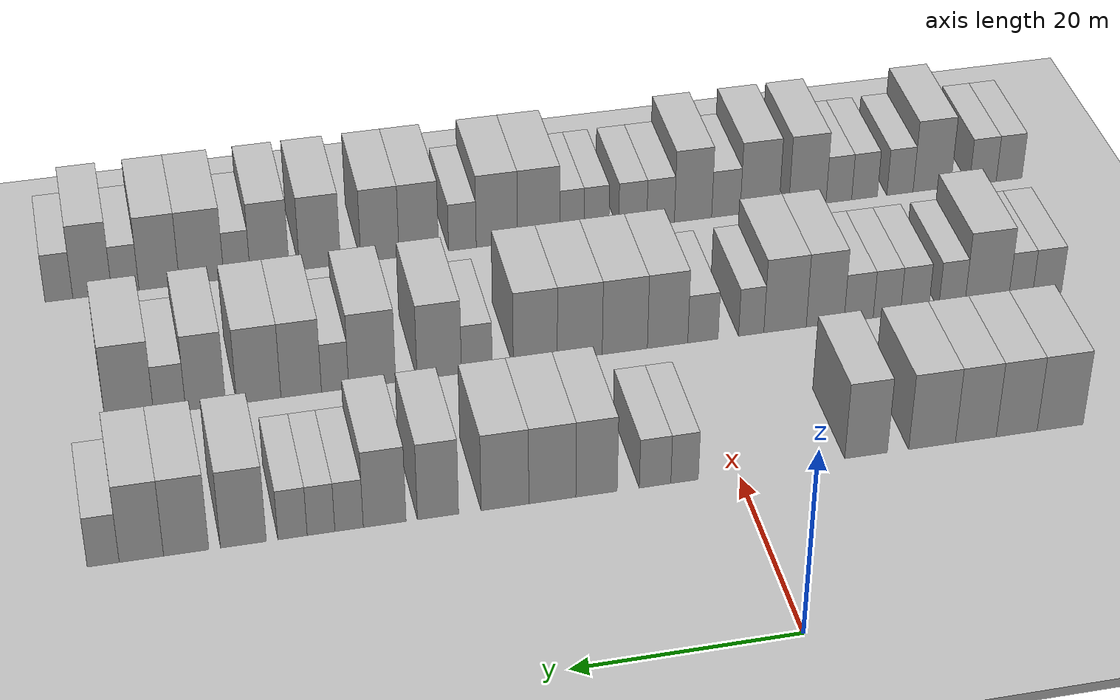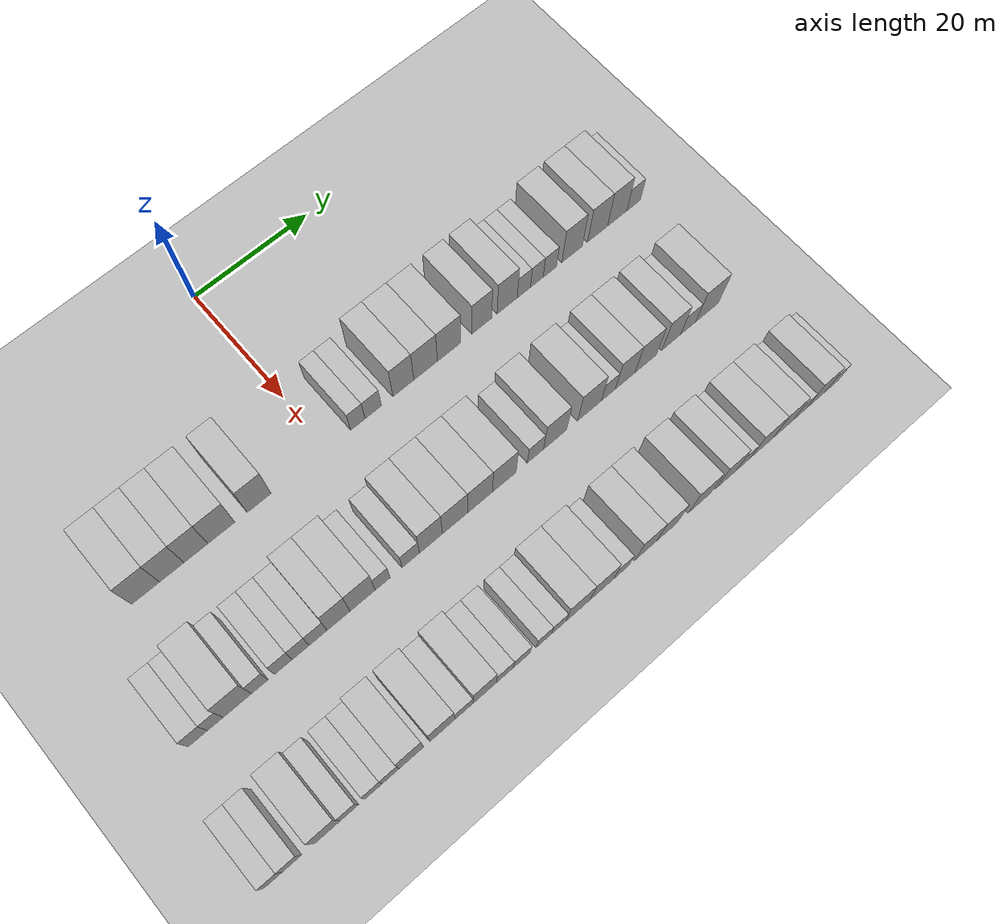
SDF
<sdf version="1.6">
 <world name="default">
  <include><name>ground_plane_1</name><uri>model://HANNAS_ground_plane</uri></include>
  <include>
   <name>ground_plane_2</name>
   <uri>model://HANNAS_ground_plane</uri>
   <pose>100 0 0  0 0 0</pose>
  </include>
  <model name="building_49">
   <static>1</static>
   <pose>25.0000 -29.9043 0 0.000000 0.000000 0.000000</pose>
   <link name="link">
    <pose>0 0 4.50 0 0 0</pose>
    <collision name="collision"><geometry><box><size>10.0000 4.3855 9.0000</size></box></geometry></collision>
    <visual name="visual">
     <cast_shadows>0</cast_shadows>
     <geometry><box><size>10.0000 4.3855 9.0000</size></box></geometry>
     <material>
      <script>
       <uri>model://HANNAS_wall/materials/scripts</uri>
       <uri>model://HANNAS_wall/materials/textures</uri>
       <name>vrc/HANNAS_wall</name>
      </script>
     </material>
    </visual>
   </link>
  </model>
  <model name="building_50">
   <static>1</static>
   <pose>25.0000 -25.7698 0 0.000000 0.000000 0.000000</pose>
   <link name="link">
    <pose>0 0 4.50 0 0 0</pose>
    <collision name="collision"><geometry><box><size>10.0000 3.8835 9.0000</size></box></geometry></collision>
    <visual name="visual">
     <cast_shadows>0</cast_shadows>
     <geometry><box><size>10.0000 3.8835 9.0000</size></box></geometry>
     <material>
      <script>
       <uri>model://HANNAS_wall/materials/scripts</uri>
       <uri>model://HANNAS_wall/materials/textures</uri>
       <name>vrc/HANNAS_wall</name>
      </script>
     </material>
    </visual>
   </link>
  </model>
  <model name="building_51">
   <static>1</static>
   <pose>25.0000 -21.9023 0 0.000000 0.000000 0.000000</pose>
   <link name="link">
    <pose>0 0 4.50 0 0 0</pose>
    <collision name="collision"><geometry><box><size>10.0000 3.8513 9.0000</size></box></geometry></collision>
    <visual name="visual">
     <cast_shadows>0</cast_shadows>
     <geometry><box><size>10.0000 3.8513 9.0000</size></box></geometry>
     <material>
      <script>
       <uri>model://HANNAS_wall/materials/scripts</uri>
       <uri>model://HANNAS_wall/materials/textures</uri>
       <name>vrc/HANNAS_wall</name>
      </script>
     </material>
    </visual>
   </link>
  </model>
  <model name="building_52">
   <static>1</static>
   <pose>25.0000 -17.7804 0 0.000000 0.000000 0.000000</pose>
   <link name="link">
    <pose>0 0 4.50 0 0 0</pose>
    <collision name="collision"><geometry><box><size>10.0000 4.3925 9.0000</size></box></geometry></collision>
    <visual name="visual">
     <cast_shadows>0</cast_shadows>
     <geometry><box><size>10.0000 4.3925 9.0000</size></box></geometry>
     <material>
      <script>
       <uri>model://HANNAS_wall/materials/scripts</uri>
       <uri>model://HANNAS_wall/materials/textures</uri>
       <name>vrc/HANNAS_wall</name>
      </script>
     </material>
    </visual>
   </link>
  </model>
  <model name="building_53">
   <static>1</static>
   <pose>25.0000 -11.5999 0 0.000000 0.000000 0.000000</pose>
   <link name="link">
    <pose>0 0 4.50 0 0 0</pose>
    <collision name="collision"><geometry><box><size>10.0000 3.9685 9.0000</size></box></geometry></collision>
    <visual name="visual">
     <cast_shadows>0</cast_shadows>
     <geometry><box><size>10.0000 3.9685 9.0000</size></box></geometry>
     <material>
      <script>
       <uri>model://HANNAS_wall/materials/scripts</uri>
       <uri>model://HANNAS_wall/materials/textures</uri>
       <name>vrc/HANNAS_wall</name>
      </script>
     </material>
    </visual>
   </link>
  </model>
  <model name="building_54">
   <static>1</static>
   <pose>25.0000 5.1252 0 0.000000 0.000000 0.000000</pose>
   <link name="link">
    <pose>0 0 3.00 0 0 0</pose>
    <collision name="collision"><geometry><box><size>10.0000 2.4939 6.0000</size></box></geometry></collision>
    <visual name="visual">
     <cast_shadows>0</cast_shadows>
     <geometry><box><size>10.0000 2.4939 6.0000</size></box></geometry>
     <material>
      <script>
       <uri>model://HANNAS_wall/materials/scripts</uri>
       <uri>model://HANNAS_wall/materials/textures</uri>
       <name>vrc/HANNAS_wall</name>
      </script>
     </material>
    </visual>
   </link>
  </model>
  <model name="building_55">
   <static>1</static>
   <pose>25.0000 7.8043 0 0.000000 0.000000 0.000000</pose>
   <link name="link">
    <pose>0 0 3.00 0 0 0</pose>
    <collision name="collision"><geometry><box><size>10.0000 2.8645 6.0000</size></box></geometry></collision>
    <visual name="visual">
     <cast_shadows>0</cast_shadows>
     <geometry><box><size>10.0000 2.8645 6.0000</size></box></geometry>
     <material>
      <script>
       <uri>model://HANNAS_wall/materials/scripts</uri>
       <uri>model://HANNAS_wall/materials/textures</uri>
       <name>vrc/HANNAS_wall</name>
      </script>
     </material>
    </visual>
   </link>
  </model>
  <model name="building_56">
   <static>1</static>
   <pose>25.0000 13.0980 0 0.000000 0.000000 0.000000</pose>
   <link name="link">
    <pose>0 0 4.50 0 0 0</pose>
    <collision name="collision"><geometry><box><size>10.0000 3.7228 9.0000</size></box></geometry></collision>
    <visual name="visual">
     <cast_shadows>0</cast_shadows>
     <geometry><box><size>10.0000 3.7228 9.0000</size></box></geometry>
     <material>
      <script>
       <uri>model://HANNAS_wall/materials/scripts</uri>
       <uri>model://HANNAS_wall/materials/textures</uri>
       <name>vrc/HANNAS_wall</name>
      </script>
     </material>
    </visual>
   </link>
  </model>
  <model name="building_57">
   <static>1</static>
   <pose>25.0000 17.0693 0 0.000000 0.000000 0.000000</pose>
   <link name="link">
    <pose>0 0 4.50 0 0 0</pose>
    <collision name="collision"><geometry><box><size>10.0000 4.2199 9.0000</size></box></geometry></collision>
    <visual name="visual">
     <cast_shadows>0</cast_shadows>
     <geometry><box><size>10.0000 4.2199 9.0000</size></box></geometry>
     <material>
      <script>
       <uri>model://HANNAS_wall/materials/scripts</uri>
       <uri>model://HANNAS_wall/materials/textures</uri>
       <name>vrc/HANNAS_wall</name>
      </script>
     </material>
    </visual>
   </link>
  </model>
  <model name="building_58">
   <static>1</static>
   <pose>25.0000 21.3011 0 0.000000 0.000000 0.000000</pose>
   <link name="link">
    <pose>0 0 4.50 0 0 0</pose>
    <collision name="collision"><geometry><box><size>10.0000 4.2438 9.0000</size></box></geometry></collision>
    <visual name="visual">
     <cast_shadows>0</cast_shadows>
     <geometry><box><size>10.0000 4.2438 9.0000</size></box></geometry>
     <material>
      <script>
       <uri>model://HANNAS_wall/materials/scripts</uri>
       <uri>model://HANNAS_wall/materials/textures</uri>
       <name>vrc/HANNAS_wall</name>
      </script>
     </material>
    </visual>
   </link>
  </model>
  <model name="building_59">
   <static>1</static>
   <pose>25.0000 27.2398 0 0.000000 0.000000 0.000000</pose>
   <link name="link">
    <pose>0 0 4.50 0 0 0</pose>
    <collision name="collision"><geometry><box><size>10.0000 3.6337 9.0000</size></box></geometry></collision>
    <visual name="visual">
     <cast_shadows>0</cast_shadows>
     <geometry><box><size>10.0000 3.6337 9.0000</size></box></geometry>
     <material>
      <script>
       <uri>model://HANNAS_wall/materials/scripts</uri>
       <uri>model://HANNAS_wall/materials/textures</uri>
       <name>vrc/HANNAS_wall</name>
      </script>
     </material>
    </visual>
   </link>
  </model>
  <model name="building_60">
   <static>1</static>
   <pose>25.0000 31.9329 0 0.000000 0.000000 0.000000</pose>
   <link name="link">
    <pose>0 0 4.50 0 0 0</pose>
    <collision name="collision"><geometry><box><size>10.0000 3.7525 9.0000</size></box></geometry></collision>
    <visual name="visual">
     <cast_shadows>0</cast_shadows>
     <geometry><box><size>10.0000 3.7525 9.0000</size></box></geometry>
     <material>
      <script>
       <uri>model://HANNAS_wall/materials/scripts</uri>
       <uri>model://HANNAS_wall/materials/textures</uri>
       <name>vrc/HANNAS_wall</name>
      </script>
     </material>
    </visual>
   </link>
  </model>
  <model name="building_61">
   <static>1</static>
   <pose>25.0000 35.0508 0 0.000000 0.000000 0.000000</pose>
   <link name="link">
    <pose>0 0 3.00 0 0 0</pose>
    <collision name="collision"><geometry><box><size>10.0000 2.4834 6.0000</size></box></geometry></collision>
    <visual name="visual">
     <cast_shadows>0</cast_shadows>
     <geometry><box><size>10.0000 2.4834 6.0000</size></box></geometry>
     <material>
      <script>
       <uri>model://HANNAS_wall/materials/scripts</uri>
       <uri>model://HANNAS_wall/materials/textures</uri>
       <name>vrc/HANNAS_wall</name>
      </script>
     </material>
    </visual>
   </link>
  </model>
  <model name="building_62">
   <static>1</static>
   <pose>25.0000 37.4992 0 0.000000 0.000000 0.000000</pose>
   <link name="link">
    <pose>0 0 3.00 0 0 0</pose>
    <collision name="collision"><geometry><box><size>10.0000 2.4134 6.0000</size></box></geometry></collision>
    <visual name="visual">
     <cast_shadows>0</cast_shadows>
     <geometry><box><size>10.0000 2.4134 6.0000</size></box></geometry>
     <material>
      <script>
       <uri>model://HANNAS_wall/materials/scripts</uri>
       <uri>model://HANNAS_wall/materials/textures</uri>
       <name>vrc/HANNAS_wall</name>
      </script>
     </material>
    </visual>
   </link>
  </model>
  <model name="building_63">
   <static>1</static>
   <pose>25.0000 39.9782 0 0.000000 0.000000 0.000000</pose>
   <link name="link">
    <pose>0 0 3.00 0 0 0</pose>
    <collision name="collision"><geometry><box><size>10.0000 2.5448 6.0000</size></box></geometry></collision>
    <visual name="visual">
     <cast_shadows>0</cast_shadows>
     <geometry><box><size>10.0000 2.5448 6.0000</size></box></geometry>
     <material>
      <script>
       <uri>model://HANNAS_wall/materials/scripts</uri>
       <uri>model://HANNAS_wall/materials/textures</uri>
       <name>vrc/HANNAS_wall</name>
      </script>
     </material>
    </visual>
   </link>
  </model>
  <model name="building_64">
   <static>1</static>
   <pose>25.0000 44.2286 0 0.000000 0.000000 0.000000</pose>
   <link name="link">
    <pose>0 0 4.50 0 0 0</pose>
    <collision name="collision"><geometry><box><size>10.0000 3.9559 9.0000</size></box></geometry></collision>
    <visual name="visual">
     <cast_shadows>0</cast_shadows>
     <geometry><box><size>10.0000 3.9559 9.0000</size></box></geometry>
     <material>
      <script>
       <uri>model://HANNAS_wall/materials/scripts</uri>
       <uri>model://HANNAS_wall/materials/textures</uri>
       <name>vrc/HANNAS_wall</name>
      </script>
     </material>
    </visual>
   </link>
  </model>
  <model name="building_65">
   <static>1</static>
   <pose>25.0000 49.1454 0 0.000000 0.000000 0.000000</pose>
   <link name="link">
    <pose>0 0 4.50 0 0 0</pose>
    <collision name="collision"><geometry><box><size>10.0000 3.8777 9.0000</size></box></geometry></collision>
    <visual name="visual">
     <cast_shadows>0</cast_shadows>
     <geometry><box><size>10.0000 3.8777 9.0000</size></box></geometry>
     <material>
      <script>
       <uri>model://HANNAS_wall/materials/scripts</uri>
       <uri>model://HANNAS_wall/materials/textures</uri>
       <name>vrc/HANNAS_wall</name>
      </script>
     </material>
    </visual>
   </link>
  </model>
  <model name="building_66">
   <static>1</static>
   <pose>25.0000 52.9749 0 0.000000 0.000000 0.000000</pose>
   <link name="link">
    <pose>0 0 4.50 0 0 0</pose>
    <collision name="collision"><geometry><box><size>10.0000 3.7815 9.0000</size></box></geometry></collision>
    <visual name="visual">
     <cast_shadows>0</cast_shadows>
     <geometry><box><size>10.0000 3.7815 9.0000</size></box></geometry>
     <material>
      <script>
       <uri>model://HANNAS_wall/materials/scripts</uri>
       <uri>model://HANNAS_wall/materials/textures</uri>
       <name>vrc/HANNAS_wall</name>
      </script>
     </material>
    </visual>
   </link>
  </model>
  <model name="building_67">
   <static>1</static>
   <pose>25.0000 56.2244 0 0.000000 0.000000 0.000000</pose>
   <link name="link">
    <pose>0 0 3.00 0 0 0</pose>
    <collision name="collision"><geometry><box><size>10.0000 2.7175 6.0000</size></box></geometry></collision>
    <visual name="visual">
     <cast_shadows>0</cast_shadows>
     <geometry><box><size>10.0000 2.7175 6.0000</size></box></geometry>
     <material>
      <script>
       <uri>model://HANNAS_wall/materials/scripts</uri>
       <uri>model://HANNAS_wall/materials/textures</uri>
       <name>vrc/HANNAS_wall</name>
      </script>
     </material>
    </visual>
   </link>
  </model>
  <model name="building_157">
   <static>1</static>
   <pose>44.0000 -35.6954 0 0.000000 0.000000 0.000000</pose>
   <link name="link">
    <pose>0 0 3.00 0 0 0</pose>
    <collision name="collision"><geometry><box><size>10.0000 2.9501 6.0000</size></box></geometry></collision>
    <visual name="visual">
     <cast_shadows>0</cast_shadows>
     <geometry><box><size>10.0000 2.9501 6.0000</size></box></geometry>
     <material>
      <script>
       <uri>model://HANNAS_wall/materials/scripts</uri>
       <uri>model://HANNAS_wall/materials/textures</uri>
       <name>vrc/HANNAS_wall</name>
      </script>
     </material>
    </visual>
   </link>
  </model>
  <model name="building_158">
   <static>1</static>
   <pose>44.0000 -33.0142 0 0.000000 0.000000 0.000000</pose>
   <link name="link">
    <pose>0 0 3.00 0 0 0</pose>
    <collision name="collision"><geometry><box><size>10.0000 2.4123 6.0000</size></box></geometry></collision>
    <visual name="visual">
     <cast_shadows>0</cast_shadows>
     <geometry><box><size>10.0000 2.4123 6.0000</size></box></geometry>
     <material>
      <script>
       <uri>model://HANNAS_wall/materials/scripts</uri>
       <uri>model://HANNAS_wall/materials/textures</uri>
       <name>vrc/HANNAS_wall</name>
      </script>
     </material>
    </visual>
   </link>
  </model>
  <model name="building_159">
   <static>1</static>
   <pose>44.0000 -29.6021 0 0.000000 0.000000 0.000000</pose>
   <link name="link">
    <pose>0 0 4.50 0 0 0</pose>
    <collision name="collision"><geometry><box><size>10.0000 4.4119 9.0000</size></box></geometry></collision>
    <visual name="visual">
     <cast_shadows>0</cast_shadows>
     <geometry><box><size>10.0000 4.4119 9.0000</size></box></geometry>
     <material>
      <script>
       <uri>model://HANNAS_wall/materials/scripts</uri>
       <uri>model://HANNAS_wall/materials/textures</uri>
       <name>vrc/HANNAS_wall</name>
      </script>
     </material>
    </visual>
   </link>
  </model>
  <model name="building_160">
   <static>1</static>
   <pose>44.0000 -26.0879 0 0.000000 0.000000 0.000000</pose>
   <link name="link">
    <pose>0 0 3.00 0 0 0</pose>
    <collision name="collision"><geometry><box><size>10.0000 2.6163 6.0000</size></box></geometry></collision>
    <visual name="visual">
     <cast_shadows>0</cast_shadows>
     <geometry><box><size>10.0000 2.6163 6.0000</size></box></geometry>
     <material>
      <script>
       <uri>model://HANNAS_wall/materials/scripts</uri>
       <uri>model://HANNAS_wall/materials/textures</uri>
       <name>vrc/HANNAS_wall</name>
      </script>
     </material>
    </visual>
   </link>
  </model>
  <model name="building_161">
   <static>1</static>
   <pose>44.0000 -22.3726 0 0.000000 0.000000 0.000000</pose>
   <link name="link">
    <pose>0 0 3.00 0 0 0</pose>
    <collision name="collision"><geometry><box><size>10.0000 2.8143 6.0000</size></box></geometry></collision>
    <visual name="visual">
     <cast_shadows>0</cast_shadows>
     <geometry><box><size>10.0000 2.8143 6.0000</size></box></geometry>
     <material>
      <script>
       <uri>model://HANNAS_wall/materials/scripts</uri>
       <uri>model://HANNAS_wall/materials/textures</uri>
       <name>vrc/HANNAS_wall</name>
      </script>
     </material>
    </visual>
   </link>
  </model>
  <model name="building_162">
   <static>1</static>
   <pose>44.0000 -19.6145 0 0.000000 0.000000 0.000000</pose>
   <link name="link">
    <pose>0 0 3.00 0 0 0</pose>
    <collision name="collision"><geometry><box><size>10.0000 2.7020 6.0000</size></box></geometry></collision>
    <visual name="visual">
     <cast_shadows>0</cast_shadows>
     <geometry><box><size>10.0000 2.7020 6.0000</size></box></geometry>
     <material>
      <script>
       <uri>model://HANNAS_wall/materials/scripts</uri>
       <uri>model://HANNAS_wall/materials/textures</uri>
       <name>vrc/HANNAS_wall</name>
      </script>
     </material>
    </visual>
   </link>
  </model>
  <model name="building_163">
   <static>1</static>
   <pose>44.0000 -16.8200 0 0.000000 0.000000 0.000000</pose>
   <link name="link">
    <pose>0 0 3.00 0 0 0</pose>
    <collision name="collision"><geometry><box><size>10.0000 2.8869 6.0000</size></box></geometry></collision>
    <visual name="visual">
     <cast_shadows>0</cast_shadows>
     <geometry><box><size>10.0000 2.8869 6.0000</size></box></geometry>
     <material>
      <script>
       <uri>model://HANNAS_wall/materials/scripts</uri>
       <uri>model://HANNAS_wall/materials/textures</uri>
       <name>vrc/HANNAS_wall</name>
      </script>
     </material>
    </visual>
   </link>
  </model>
  <model name="building_164">
   <static>1</static>
   <pose>44.0000 -13.5125 0 0.000000 0.000000 0.000000</pose>
   <link name="link">
    <pose>0 0 4.50 0 0 0</pose>
    <collision name="collision"><geometry><box><size>10.0000 3.7283 9.0000</size></box></geometry></collision>
    <visual name="visual">
     <cast_shadows>0</cast_shadows>
     <geometry><box><size>10.0000 3.7283 9.0000</size></box></geometry>
     <material>
      <script>
       <uri>model://HANNAS_wall/materials/scripts</uri>
       <uri>model://HANNAS_wall/materials/textures</uri>
       <name>vrc/HANNAS_wall</name>
      </script>
     </material>
    </visual>
   </link>
  </model>
  <model name="building_165">
   <static>1</static>
   <pose>44.0000 -9.5671 0 0.000000 0.000000 0.000000</pose>
   <link name="link">
    <pose>0 0 4.50 0 0 0</pose>
    <collision name="collision"><geometry><box><size>10.0000 4.1624 9.0000</size></box></geometry></collision>
    <visual name="visual">
     <cast_shadows>0</cast_shadows>
     <geometry><box><size>10.0000 4.1624 9.0000</size></box></geometry>
     <material>
      <script>
       <uri>model://HANNAS_wall/materials/scripts</uri>
       <uri>model://HANNAS_wall/materials/textures</uri>
       <name>vrc/HANNAS_wall</name>
      </script>
     </material>
    </visual>
   </link>
  </model>
  <model name="building_166">
   <static>1</static>
   <pose>44.0000 -6.2534 0 0.000000 0.000000 0.000000</pose>
   <link name="link">
    <pose>0 0 3.00 0 0 0</pose>
    <collision name="collision"><geometry><box><size>10.0000 2.4652 6.0000</size></box></geometry></collision>
    <visual name="visual">
     <cast_shadows>0</cast_shadows>
     <geometry><box><size>10.0000 2.4652 6.0000</size></box></geometry>
     <material>
      <script>
       <uri>model://HANNAS_wall/materials/scripts</uri>
       <uri>model://HANNAS_wall/materials/textures</uri>
       <name>vrc/HANNAS_wall</name>
      </script>
     </material>
    </visual>
   </link>
  </model>
  <model name="building_167">
   <static>1</static>
   <pose>44.0000 -1.5478 0 0.000000 0.000000 0.000000</pose>
   <link name="link">
    <pose>0 0 3.00 0 0 0</pose>
    <collision name="collision"><geometry><box><size>10.0000 2.9460 6.0000</size></box></geometry></collision>
    <visual name="visual">
     <cast_shadows>0</cast_shadows>
     <geometry><box><size>10.0000 2.9460 6.0000</size></box></geometry>
     <material>
      <script>
       <uri>model://HANNAS_wall/materials/scripts</uri>
       <uri>model://HANNAS_wall/materials/textures</uri>
       <name>vrc/HANNAS_wall</name>
      </script>
     </material>
    </visual>
   </link>
  </model>
  <model name="building_168">
   <static>1</static>
   <pose>44.0000 1.8777 0 0.000000 0.000000 0.000000</pose>
   <link name="link">
    <pose>0 0 4.50 0 0 0</pose>
    <collision name="collision"><geometry><box><size>10.0000 3.9048 9.0000</size></box></geometry></collision>
    <visual name="visual">
     <cast_shadows>0</cast_shadows>
     <geometry><box><size>10.0000 3.9048 9.0000</size></box></geometry>
     <material>
      <script>
       <uri>model://HANNAS_wall/materials/scripts</uri>
       <uri>model://HANNAS_wall/materials/textures</uri>
       <name>vrc/HANNAS_wall</name>
      </script>
     </material>
    </visual>
   </link>
  </model>
  <model name="building_169">
   <static>1</static>
   <pose>44.0000 6.0030 0 0.000000 0.000000 0.000000</pose>
   <link name="link">
    <pose>0 0 4.50 0 0 0</pose>
    <collision name="collision"><geometry><box><size>10.0000 4.3459 9.0000</size></box></geometry></collision>
    <visual name="visual">
     <cast_shadows>0</cast_shadows>
     <geometry><box><size>10.0000 4.3459 9.0000</size></box></geometry>
     <material>
      <script>
       <uri>model://HANNAS_wall/materials/scripts</uri>
       <uri>model://HANNAS_wall/materials/textures</uri>
       <name>vrc/HANNAS_wall</name>
      </script>
     </material>
    </visual>
   </link>
  </model>
  <model name="building_170">
   <static>1</static>
   <pose>44.0000 10.3260 0 0.000000 0.000000 0.000000</pose>
   <link name="link">
    <pose>0 0 4.50 0 0 0</pose>
    <collision name="collision"><geometry><box><size>10.0000 4.3001 9.0000</size></box></geometry></collision>
    <visual name="visual">
     <cast_shadows>0</cast_shadows>
     <geometry><box><size>10.0000 4.3001 9.0000</size></box></geometry>
     <material>
      <script>
       <uri>model://HANNAS_wall/materials/scripts</uri>
       <uri>model://HANNAS_wall/materials/textures</uri>
       <name>vrc/HANNAS_wall</name>
      </script>
     </material>
    </visual>
   </link>
  </model>
  <model name="building_171">
   <static>1</static>
   <pose>44.0000 14.5685 0 0.000000 0.000000 0.000000</pose>
   <link name="link">
    <pose>0 0 4.50 0 0 0</pose>
    <collision name="collision"><geometry><box><size>10.0000 4.1847 9.0000</size></box></geometry></collision>
    <visual name="visual">
     <cast_shadows>0</cast_shadows>
     <geometry><box><size>10.0000 4.1847 9.0000</size></box></geometry>
     <material>
      <script>
       <uri>model://HANNAS_wall/materials/scripts</uri>
       <uri>model://HANNAS_wall/materials/textures</uri>
       <name>vrc/HANNAS_wall</name>
      </script>
     </material>
    </visual>
   </link>
  </model>
  <model name="building_172">
   <static>1</static>
   <pose>44.0000 20.1093 0 0.000000 0.000000 0.000000</pose>
   <link name="link">
    <pose>0 0 3.00 0 0 0</pose>
    <collision name="collision"><geometry><box><size>10.0000 2.8970 6.0000</size></box></geometry></collision>
    <visual name="visual">
     <cast_shadows>0</cast_shadows>
     <geometry><box><size>10.0000 2.8970 6.0000</size></box></geometry>
     <material>
      <script>
       <uri>model://HANNAS_wall/materials/scripts</uri>
       <uri>model://HANNAS_wall/materials/textures</uri>
       <name>vrc/HANNAS_wall</name>
      </script>
     </material>
    </visual>
   </link>
  </model>
  <model name="building_173">
   <static>1</static>
   <pose>44.0000 23.6455 0 0.000000 0.000000 0.000000</pose>
   <link name="link">
    <pose>0 0 4.50 0 0 0</pose>
    <collision name="collision"><geometry><box><size>10.0000 4.1752 9.0000</size></box></geometry></collision>
    <visual name="visual">
     <cast_shadows>0</cast_shadows>
     <geometry><box><size>10.0000 4.1752 9.0000</size></box></geometry>
     <material>
      <script>
       <uri>model://HANNAS_wall/materials/scripts</uri>
       <uri>model://HANNAS_wall/materials/textures</uri>
       <name>vrc/HANNAS_wall</name>
      </script>
     </material>
    </visual>
   </link>
  </model>
  <model name="building_174">
   <static>1</static>
   <pose>44.0000 29.9189 0 0.000000 0.000000 0.000000</pose>
   <link name="link">
    <pose>0 0 4.50 0 0 0</pose>
    <collision name="collision"><geometry><box><size>10.0000 4.3717 9.0000</size></box></geometry></collision>
    <visual name="visual">
     <cast_shadows>0</cast_shadows>
     <geometry><box><size>10.0000 4.3717 9.0000</size></box></geometry>
     <material>
      <script>
       <uri>model://HANNAS_wall/materials/scripts</uri>
       <uri>model://HANNAS_wall/materials/textures</uri>
       <name>vrc/HANNAS_wall</name>
      </script>
     </material>
    </visual>
   </link>
  </model>
  <model name="building_175">
   <static>1</static>
   <pose>44.0000 33.3730 0 0.000000 0.000000 0.000000</pose>
   <link name="link">
    <pose>0 0 3.00 0 0 0</pose>
    <collision name="collision"><geometry><box><size>10.0000 2.5366 6.0000</size></box></geometry></collision>
    <visual name="visual">
     <cast_shadows>0</cast_shadows>
     <geometry><box><size>10.0000 2.5366 6.0000</size></box></geometry>
     <material>
      <script>
       <uri>model://HANNAS_wall/materials/scripts</uri>
       <uri>model://HANNAS_wall/materials/textures</uri>
       <name>vrc/HANNAS_wall</name>
      </script>
     </material>
    </visual>
   </link>
  </model>
  <model name="building_176">
   <static>1</static>
   <pose>44.0000 36.5141 0 0.000000 0.000000 0.000000</pose>
   <link name="link">
    <pose>0 0 4.50 0 0 0</pose>
    <collision name="collision"><geometry><box><size>10.0000 3.7456 9.0000</size></box></geometry></collision>
    <visual name="visual">
     <cast_shadows>0</cast_shadows>
     <geometry><box><size>10.0000 3.7456 9.0000</size></box></geometry>
     <material>
      <script>
       <uri>model://HANNAS_wall/materials/scripts</uri>
       <uri>model://HANNAS_wall/materials/textures</uri>
       <name>vrc/HANNAS_wall</name>
      </script>
     </material>
    </visual>
   </link>
  </model>
  <model name="building_177">
   <static>1</static>
   <pose>44.0000 40.4242 0 0.000000 0.000000 0.000000</pose>
   <link name="link">
    <pose>0 0 4.50 0 0 0</pose>
    <collision name="collision"><geometry><box><size>10.0000 4.0746 9.0000</size></box></geometry></collision>
    <visual name="visual">
     <cast_shadows>0</cast_shadows>
     <geometry><box><size>10.0000 4.0746 9.0000</size></box></geometry>
     <material>
      <script>
       <uri>model://HANNAS_wall/materials/scripts</uri>
       <uri>model://HANNAS_wall/materials/textures</uri>
       <name>vrc/HANNAS_wall</name>
      </script>
     </material>
    </visual>
   </link>
  </model>
  <model name="building_178">
   <static>1</static>
   <pose>44.0000 45.2902 0 0.000000 0.000000 0.000000</pose>
   <link name="link">
    <pose>0 0 4.50 0 0 0</pose>
    <collision name="collision"><geometry><box><size>10.0000 3.6574 9.0000</size></box></geometry></collision>
    <visual name="visual">
     <cast_shadows>0</cast_shadows>
     <geometry><box><size>10.0000 3.6574 9.0000</size></box></geometry>
     <material>
      <script>
       <uri>model://HANNAS_wall/materials/scripts</uri>
       <uri>model://HANNAS_wall/materials/textures</uri>
       <name>vrc/HANNAS_wall</name>
      </script>
     </material>
    </visual>
   </link>
  </model>
  <model name="building_179">
   <static>1</static>
   <pose>44.0000 48.5727 0 0.000000 0.000000 0.000000</pose>
   <link name="link">
    <pose>0 0 3.00 0 0 0</pose>
    <collision name="collision"><geometry><box><size>10.0000 2.9076 6.0000</size></box></geometry></collision>
    <visual name="visual">
     <cast_shadows>0</cast_shadows>
     <geometry><box><size>10.0000 2.9076 6.0000</size></box></geometry>
     <material>
      <script>
       <uri>model://HANNAS_wall/materials/scripts</uri>
       <uri>model://HANNAS_wall/materials/textures</uri>
       <name>vrc/HANNAS_wall</name>
      </script>
     </material>
    </visual>
   </link>
  </model>
  <model name="building_180">
   <static>1</static>
   <pose>44.0000 52.2345 0 0.000000 0.000000 0.000000</pose>
   <link name="link">
    <pose>0 0 4.50 0 0 0</pose>
    <collision name="collision"><geometry><box><size>10.0000 4.4158 9.0000</size></box></geometry></collision>
    <visual name="visual">
     <cast_shadows>0</cast_shadows>
     <geometry><box><size>10.0000 4.4158 9.0000</size></box></geometry>
     <material>
      <script>
       <uri>model://HANNAS_wall/materials/scripts</uri>
       <uri>model://HANNAS_wall/materials/textures</uri>
       <name>vrc/HANNAS_wall</name>
      </script>
     </material>
    </visual>
   </link>
  </model>
  <model name="building_281">
   <static>1</static>
   <pose>63.0000 -38.6848 0 0.000000 0.000000 0.000000</pose>
   <link name="link">
    <pose>0 0 3.00 0 0 0</pose>
    <collision name="collision"><geometry><box><size>10.0000 2.7489 6.0000</size></box></geometry></collision>
    <visual name="visual">
     <cast_shadows>0</cast_shadows>
     <geometry><box><size>10.0000 2.7489 6.0000</size></box></geometry>
     <material>
      <script>
       <uri>model://HANNAS_wall/materials/scripts</uri>
       <uri>model://HANNAS_wall/materials/textures</uri>
       <name>vrc/HANNAS_wall</name>
      </script>
     </material>
    </visual>
   </link>
  </model>
  <model name="building_282">
   <static>1</static>
   <pose>63.0000 -35.8818 0 0.000000 0.000000 0.000000</pose>
   <link name="link">
    <pose>0 0 3.00 0 0 0</pose>
    <collision name="collision"><geometry><box><size>10.0000 2.8569 6.0000</size></box></geometry></collision>
    <visual name="visual">
     <cast_shadows>0</cast_shadows>
     <geometry><box><size>10.0000 2.8569 6.0000</size></box></geometry>
     <material>
      <script>
       <uri>model://HANNAS_wall/materials/scripts</uri>
       <uri>model://HANNAS_wall/materials/textures</uri>
       <name>vrc/HANNAS_wall</name>
      </script>
     </material>
    </visual>
   </link>
  </model>
  <model name="building_283">
   <static>1</static>
   <pose>63.0000 -30.4624 0 0.000000 0.000000 0.000000</pose>
   <link name="link">
    <pose>0 0 4.50 0 0 0</pose>
    <collision name="collision"><geometry><box><size>10.0000 3.9820 9.0000</size></box></geometry></collision>
    <visual name="visual">
     <cast_shadows>0</cast_shadows>
     <geometry><box><size>10.0000 3.9820 9.0000</size></box></geometry>
     <material>
      <script>
       <uri>model://HANNAS_wall/materials/scripts</uri>
       <uri>model://HANNAS_wall/materials/textures</uri>
       <name>vrc/HANNAS_wall</name>
      </script>
     </material>
    </visual>
   </link>
  </model>
  <model name="building_284">
   <static>1</static>
   <pose>63.0000 -27.0901 0 0.000000 0.000000 0.000000</pose>
   <link name="link">
    <pose>0 0 3.00 0 0 0</pose>
    <collision name="collision"><geometry><box><size>10.0000 2.7624 6.0000</size></box></geometry></collision>
    <visual name="visual">
     <cast_shadows>0</cast_shadows>
     <geometry><box><size>10.0000 2.7624 6.0000</size></box></geometry>
     <material>
      <script>
       <uri>model://HANNAS_wall/materials/scripts</uri>
       <uri>model://HANNAS_wall/materials/textures</uri>
       <name>vrc/HANNAS_wall</name>
      </script>
     </material>
    </visual>
   </link>
  </model>
  <model name="building_285">
   <static>1</static>
   <pose>63.0000 -23.3567 0 0.000000 0.000000 0.000000</pose>
   <link name="link">
    <pose>0 0 3.00 0 0 0</pose>
    <collision name="collision"><geometry><box><size>10.0000 2.7044 6.0000</size></box></geometry></collision>
    <visual name="visual">
     <cast_shadows>0</cast_shadows>
     <geometry><box><size>10.0000 2.7044 6.0000</size></box></geometry>
     <material>
      <script>
       <uri>model://HANNAS_wall/materials/scripts</uri>
       <uri>model://HANNAS_wall/materials/textures</uri>
       <name>vrc/HANNAS_wall</name>
      </script>
     </material>
    </visual>
   </link>
  </model>
  <model name="building_286">
   <static>1</static>
   <pose>63.0000 -20.6589 0 0.000000 0.000000 0.000000</pose>
   <link name="link">
    <pose>0 0 3.00 0 0 0</pose>
    <collision name="collision"><geometry><box><size>10.0000 2.6913 6.0000</size></box></geometry></collision>
    <visual name="visual">
     <cast_shadows>0</cast_shadows>
     <geometry><box><size>10.0000 2.6913 6.0000</size></box></geometry>
     <material>
      <script>
       <uri>model://HANNAS_wall/materials/scripts</uri>
       <uri>model://HANNAS_wall/materials/textures</uri>
       <name>vrc/HANNAS_wall</name>
      </script>
     </material>
    </visual>
   </link>
  </model>
  <model name="building_287">
   <static>1</static>
   <pose>63.0000 -17.3670 0 0.000000 0.000000 0.000000</pose>
   <link name="link">
    <pose>0 0 4.50 0 0 0</pose>
    <collision name="collision"><geometry><box><size>10.0000 3.8924 9.0000</size></box></geometry></collision>
    <visual name="visual">
     <cast_shadows>0</cast_shadows>
     <geometry><box><size>10.0000 3.8924 9.0000</size></box></geometry>
     <material>
      <script>
       <uri>model://HANNAS_wall/materials/scripts</uri>
       <uri>model://HANNAS_wall/materials/textures</uri>
       <name>vrc/HANNAS_wall</name>
      </script>
     </material>
    </visual>
   </link>
  </model>
  <model name="building_288">
   <static>1</static>
   <pose>63.0000 -12.4018 0 0.000000 0.000000 0.000000</pose>
   <link name="link">
    <pose>0 0 4.50 0 0 0</pose>
    <collision name="collision"><geometry><box><size>10.0000 4.0380 9.0000</size></box></geometry></collision>
    <visual name="visual">
     <cast_shadows>0</cast_shadows>
     <geometry><box><size>10.0000 4.0380 9.0000</size></box></geometry>
     <material>
      <script>
       <uri>model://HANNAS_wall/materials/scripts</uri>
       <uri>model://HANNAS_wall/materials/textures</uri>
       <name>vrc/HANNAS_wall</name>
      </script>
     </material>
    </visual>
   </link>
  </model>
  <model name="building_289">
   <static>1</static>
   <pose>63.0000 -8.9106 0 0.000000 0.000000 0.000000</pose>
   <link name="link">
    <pose>0 0 3.00 0 0 0</pose>
    <collision name="collision"><geometry><box><size>10.0000 2.9444 6.0000</size></box></geometry></collision>
    <visual name="visual">
     <cast_shadows>0</cast_shadows>
     <geometry><box><size>10.0000 2.9444 6.0000</size></box></geometry>
     <material>
      <script>
       <uri>model://HANNAS_wall/materials/scripts</uri>
       <uri>model://HANNAS_wall/materials/textures</uri>
       <name>vrc/HANNAS_wall</name>
      </script>
     </material>
    </visual>
   </link>
  </model>
  <model name="building_290">
   <static>1</static>
   <pose>63.0000 -5.5254 0 0.000000 0.000000 0.000000</pose>
   <link name="link">
    <pose>0 0 4.50 0 0 0</pose>
    <collision name="collision"><geometry><box><size>10.0000 3.8259 9.0000</size></box></geometry></collision>
    <visual name="visual">
     <cast_shadows>0</cast_shadows>
     <geometry><box><size>10.0000 3.8259 9.0000</size></box></geometry>
     <material>
      <script>
       <uri>model://HANNAS_wall/materials/scripts</uri>
       <uri>model://HANNAS_wall/materials/textures</uri>
       <name>vrc/HANNAS_wall</name>
      </script>
     </material>
    </visual>
   </link>
  </model>
  <model name="building_291">
   <static>1</static>
   <pose>63.0000 -2.1945 0 0.000000 0.000000 0.000000</pose>
   <link name="link">
    <pose>0 0 3.00 0 0 0</pose>
    <collision name="collision"><geometry><box><size>10.0000 2.8360 6.0000</size></box></geometry></collision>
    <visual name="visual">
     <cast_shadows>0</cast_shadows>
     <geometry><box><size>10.0000 2.8360 6.0000</size></box></geometry>
     <material>
      <script>
       <uri>model://HANNAS_wall/materials/scripts</uri>
       <uri>model://HANNAS_wall/materials/textures</uri>
       <name>vrc/HANNAS_wall</name>
      </script>
     </material>
    </visual>
   </link>
  </model>
  <model name="building_292">
   <static>1</static>
   <pose>63.0000 0.6583 0 0.000000 0.000000 0.000000</pose>
   <link name="link">
    <pose>0 0 3.00 0 0 0</pose>
    <collision name="collision"><geometry><box><size>10.0000 2.8696 6.0000</size></box></geometry></collision>
    <visual name="visual">
     <cast_shadows>0</cast_shadows>
     <geometry><box><size>10.0000 2.8696 6.0000</size></box></geometry>
     <material>
      <script>
       <uri>model://HANNAS_wall/materials/scripts</uri>
       <uri>model://HANNAS_wall/materials/textures</uri>
       <name>vrc/HANNAS_wall</name>
      </script>
     </material>
    </visual>
   </link>
  </model>
  <model name="building_293">
   <static>1</static>
   <pose>63.0000 4.3585 0 0.000000 0.000000 0.000000</pose>
   <link name="link">
    <pose>0 0 3.00 0 0 0</pose>
    <collision name="collision"><geometry><box><size>10.0000 2.5309 6.0000</size></box></geometry></collision>
    <visual name="visual">
     <cast_shadows>0</cast_shadows>
     <geometry><box><size>10.0000 2.5309 6.0000</size></box></geometry>
     <material>
      <script>
       <uri>model://HANNAS_wall/materials/scripts</uri>
       <uri>model://HANNAS_wall/materials/textures</uri>
       <name>vrc/HANNAS_wall</name>
      </script>
     </material>
    </visual>
   </link>
  </model>
  <model name="building_294">
   <static>1</static>
   <pose>63.0000 6.8575 0 0.000000 0.000000 0.000000</pose>
   <link name="link">
    <pose>0 0 3.00 0 0 0</pose>
    <collision name="collision"><geometry><box><size>10.0000 2.4671 6.0000</size></box></geometry></collision>
    <visual name="visual">
     <cast_shadows>0</cast_shadows>
     <geometry><box><size>10.0000 2.4671 6.0000</size></box></geometry>
     <material>
      <script>
       <uri>model://HANNAS_wall/materials/scripts</uri>
       <uri>model://HANNAS_wall/materials/textures</uri>
       <name>vrc/HANNAS_wall</name>
      </script>
     </material>
    </visual>
   </link>
  </model>
  <model name="building_295">
   <static>1</static>
   <pose>63.0000 10.2171 0 0.000000 0.000000 0.000000</pose>
   <link name="link">
    <pose>0 0 4.50 0 0 0</pose>
    <collision name="collision"><geometry><box><size>10.0000 4.2521 9.0000</size></box></geometry></collision>
    <visual name="visual">
     <cast_shadows>0</cast_shadows>
     <geometry><box><size>10.0000 4.2521 9.0000</size></box></geometry>
     <material>
      <script>
       <uri>model://HANNAS_wall/materials/scripts</uri>
       <uri>model://HANNAS_wall/materials/textures</uri>
       <name>vrc/HANNAS_wall</name>
      </script>
     </material>
    </visual>
   </link>
  </model>
  <model name="building_296">
   <static>1</static>
   <pose>63.0000 14.4070 0 0.000000 0.000000 0.000000</pose>
   <link name="link">
    <pose>0 0 4.50 0 0 0</pose>
    <collision name="collision"><geometry><box><size>10.0000 4.1277 9.0000</size></box></geometry></collision>
    <visual name="visual">
     <cast_shadows>0</cast_shadows>
     <geometry><box><size>10.0000 4.1277 9.0000</size></box></geometry>
     <material>
      <script>
       <uri>model://HANNAS_wall/materials/scripts</uri>
       <uri>model://HANNAS_wall/materials/textures</uri>
       <name>vrc/HANNAS_wall</name>
      </script>
     </material>
    </visual>
   </link>
  </model>
  <model name="building_297">
   <static>1</static>
   <pose>63.0000 17.8546 0 0.000000 0.000000 0.000000</pose>
   <link name="link">
    <pose>0 0 3.00 0 0 0</pose>
    <collision name="collision"><geometry><box><size>10.0000 2.7675 6.0000</size></box></geometry></collision>
    <visual name="visual">
     <cast_shadows>0</cast_shadows>
     <geometry><box><size>10.0000 2.7675 6.0000</size></box></geometry>
     <material>
      <script>
       <uri>model://HANNAS_wall/materials/scripts</uri>
       <uri>model://HANNAS_wall/materials/textures</uri>
       <name>vrc/HANNAS_wall</name>
      </script>
     </material>
    </visual>
   </link>
  </model>
  <model name="building_298">
   <static>1</static>
   <pose>63.0000 22.1988 0 0.000000 0.000000 0.000000</pose>
   <link name="link">
    <pose>0 0 4.50 0 0 0</pose>
    <collision name="collision"><geometry><box><size>10.0000 3.9208 9.0000</size></box></geometry></collision>
    <visual name="visual">
     <cast_shadows>0</cast_shadows>
     <geometry><box><size>10.0000 3.9208 9.0000</size></box></geometry>
     <material>
      <script>
       <uri>model://HANNAS_wall/materials/scripts</uri>
       <uri>model://HANNAS_wall/materials/textures</uri>
       <name>vrc/HANNAS_wall</name>
      </script>
     </material>
    </visual>
   </link>
  </model>
  <model name="building_299">
   <static>1</static>
   <pose>63.0000 26.0491 0 0.000000 0.000000 0.000000</pose>
   <link name="link">
    <pose>0 0 4.50 0 0 0</pose>
    <collision name="collision"><geometry><box><size>10.0000 3.7799 9.0000</size></box></geometry></collision>
    <visual name="visual">
     <cast_shadows>0</cast_shadows>
     <geometry><box><size>10.0000 3.7799 9.0000</size></box></geometry>
     <material>
      <script>
       <uri>model://HANNAS_wall/materials/scripts</uri>
       <uri>model://HANNAS_wall/materials/textures</uri>
       <name>vrc/HANNAS_wall</name>
      </script>
     </material>
    </visual>
   </link>
  </model>
  <model name="building_300">
   <static>1</static>
   <pose>63.0000 31.9594 0 0.000000 0.000000 0.000000</pose>
   <link name="link">
    <pose>0 0 4.50 0 0 0</pose>
    <collision name="collision"><geometry><box><size>10.0000 4.0407 9.0000</size></box></geometry></collision>
    <visual name="visual">
     <cast_shadows>0</cast_shadows>
     <geometry><box><size>10.0000 4.0407 9.0000</size></box></geometry>
     <material>
      <script>
       <uri>model://HANNAS_wall/materials/scripts</uri>
       <uri>model://HANNAS_wall/materials/textures</uri>
       <name>vrc/HANNAS_wall</name>
      </script>
     </material>
    </visual>
   </link>
  </model>
  <model name="building_301">
   <static>1</static>
   <pose>63.0000 36.8836 0 0.000000 0.000000 0.000000</pose>
   <link name="link">
    <pose>0 0 4.50 0 0 0</pose>
    <collision name="collision"><geometry><box><size>10.0000 3.8077 9.0000</size></box></geometry></collision>
    <visual name="visual">
     <cast_shadows>0</cast_shadows>
     <geometry><box><size>10.0000 3.8077 9.0000</size></box></geometry>
     <material>
      <script>
       <uri>model://HANNAS_wall/materials/scripts</uri>
       <uri>model://HANNAS_wall/materials/textures</uri>
       <name>vrc/HANNAS_wall</name>
      </script>
     </material>
    </visual>
   </link>
  </model>
  <model name="building_302">
   <static>1</static>
   <pose>63.0000 40.0641 0 0.000000 0.000000 0.000000</pose>
   <link name="link">
    <pose>0 0 3.00 0 0 0</pose>
    <collision name="collision"><geometry><box><size>10.0000 2.5533 6.0000</size></box></geometry></collision>
    <visual name="visual">
     <cast_shadows>0</cast_shadows>
     <geometry><box><size>10.0000 2.5533 6.0000</size></box></geometry>
     <material>
      <script>
       <uri>model://HANNAS_wall/materials/scripts</uri>
       <uri>model://HANNAS_wall/materials/textures</uri>
       <name>vrc/HANNAS_wall</name>
      </script>
     </material>
    </visual>
   </link>
  </model>
  <model name="building_303">
   <static>1</static>
   <pose>63.0000 43.4941 0 0.000000 0.000000 0.000000</pose>
   <link name="link">
    <pose>0 0 4.50 0 0 0</pose>
    <collision name="collision"><geometry><box><size>10.0000 4.3067 9.0000</size></box></geometry></collision>
    <visual name="visual">
     <cast_shadows>0</cast_shadows>
     <geometry><box><size>10.0000 4.3067 9.0000</size></box></geometry>
     <material>
      <script>
       <uri>model://HANNAS_wall/materials/scripts</uri>
       <uri>model://HANNAS_wall/materials/textures</uri>
       <name>vrc/HANNAS_wall</name>
      </script>
     </material>
    </visual>
   </link>
  </model>
  <model name="building_304">
   <static>1</static>
   <pose>63.0000 47.5993 0 0.000000 0.000000 0.000000</pose>
   <link name="link">
    <pose>0 0 4.50 0 0 0</pose>
    <collision name="collision"><geometry><box><size>10.0000 3.9037 9.0000</size></box></geometry></collision>
    <visual name="visual">
     <cast_shadows>0</cast_shadows>
     <geometry><box><size>10.0000 3.9037 9.0000</size></box></geometry>
     <material>
      <script>
       <uri>model://HANNAS_wall/materials/scripts</uri>
       <uri>model://HANNAS_wall/materials/textures</uri>
       <name>vrc/HANNAS_wall</name>
      </script>
     </material>
    </visual>
   </link>
  </model>
  <model name="building_305">
   <static>1</static>
   <pose>63.0000 50.8540 0 0.000000 0.000000 0.000000</pose>
   <link name="link">
    <pose>0 0 3.00 0 0 0</pose>
    <collision name="collision"><geometry><box><size>10.0000 2.6057 6.0000</size></box></geometry></collision>
    <visual name="visual">
     <cast_shadows>0</cast_shadows>
     <geometry><box><size>10.0000 2.6057 6.0000</size></box></geometry>
     <material>
      <script>
       <uri>model://HANNAS_wall/materials/scripts</uri>
       <uri>model://HANNAS_wall/materials/textures</uri>
       <name>vrc/HANNAS_wall</name>
      </script>
     </material>
    </visual>
   </link>
  </model>
  <model name="building_306">
   <static>1</static>
   <pose>63.0000 54.0207 0 0.000000 0.000000 0.000000</pose>
   <link name="link">
    <pose>0 0 4.50 0 0 0</pose>
    <collision name="collision"><geometry><box><size>10.0000 3.7276 9.0000</size></box></geometry></collision>
    <visual name="visual">
     <cast_shadows>0</cast_shadows>
     <geometry><box><size>10.0000 3.7276 9.0000</size></box></geometry>
     <material>
      <script>
       <uri>model://HANNAS_wall/materials/scripts</uri>
       <uri>model://HANNAS_wall/materials/textures</uri>
       <name>vrc/HANNAS_wall</name>
      </script>
     </material>
    </visual>
   </link>
  </model>
  <model name="building_307">
   <static>1</static>
   <pose>63.0000 57.2075 0 0.000000 0.000000 0.000000</pose>
   <link name="link">
    <pose>0 0 3.00 0 0 0</pose>
    <collision name="collision"><geometry><box><size>10.0000 2.6462 6.0000</size></box></geometry></collision>
    <visual name="visual">
     <cast_shadows>0</cast_shadows>
     <geometry><box><size>10.0000 2.6462 6.0000</size></box></geometry>
     <material>
      <script>
       <uri>model://HANNAS_wall/materials/scripts</uri>
       <uri>model://HANNAS_wall/materials/textures</uri>
       <name>vrc/HANNAS_wall</name>
      </script>
     </material>
    </visual>
   </link>
  </model>
 </world>
</sdf>
